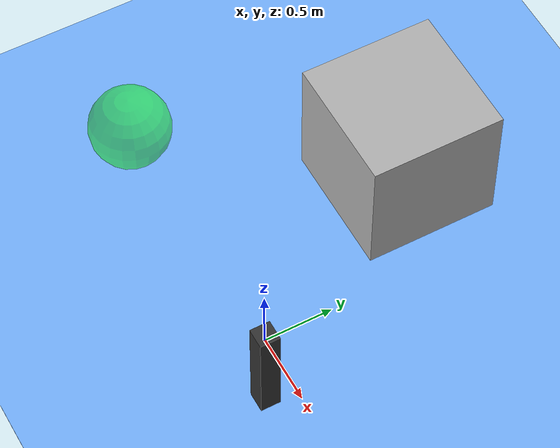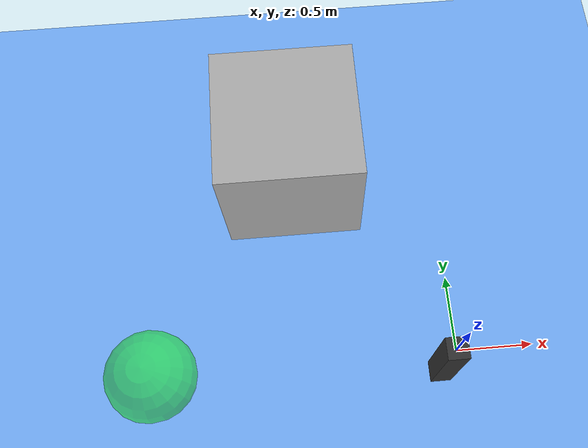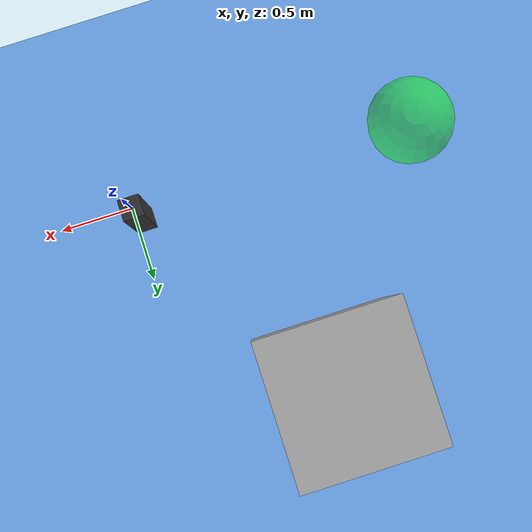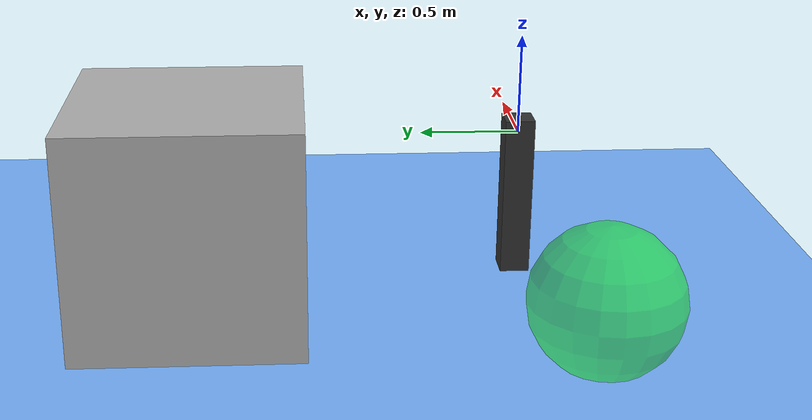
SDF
<sdf version="1.6">
 <world name="world">
  <physics type="ode">
   <max_step_size>0.004</max_step_size>
   <max_contacts>5</max_contacts>
   <ode>
    <solver>
     <iters>25</iters>
     <type>world</type>
     <sor>1.3</sor>
     <use_dynamic_moi_rescaling>0</use_dynamic_moi_rescaling>
    </solver>
    <constraints><cfm>0.0</cfm><contact_surface_layer>0.0</contact_surface_layer></constraints>
   </ode>
  </physics>
  <model name="GoalArea">
   <pose>-2.0 0.0 0.0 0 -0 0</pose>
   <static>1</static>
   <link name="GoalArea_link">
    <visual name="GoalArea_visual">
     <geometry><sphere><radius>0.3</radius></sphere></geometry>
     <material><ambient>0 1 0 0.5</ambient></material>
    </visual>
   </link>
  </model>
  <model name="floor">
   <pose>0 0 -0.75 0 0 0</pose>
   <static>1</static>
   <link name="floorlink">
    <visual name="floorvisual">
     <geometry><box><size>100 100 0.005</size></box></geometry>
     <material><ambient>0.46274509803921568627 0.6980392156862745098 1 1.0</ambient></material>
    </visual>
    <collision name="floorcollision"><geometry><box><size>10 10 0.005</size></box></geometry></collision>
   </link>
  </model>
  <model name="base">
   <pose>0 0 -0.425 0 0 0</pose>
   <static>1</static>
   <link name="baselink">
    <visual name="basevisual">
     <geometry><box><size>0.15 0.15 1</size></box></geometry>
     <material><ambient>0.2 0.2 0.2 1.0</ambient></material>
    </visual>
   </link>
  </model>
  <model name="box1">
   <pose>-1.0 1.6 0.0 0 0 0</pose>
   <static>1</static>
   <link name="box1link">
    <visual name="box1visual">
     <geometry><box><size>1 1 1</size></box></geometry>
     <material><ambient>0.7 0.7 0.7 1.0</ambient></material>
    </visual>
    <collision name="box1collision"><geometry><box><size>1 1 1</size></box></geometry></collision>
   </link>
  </model>
 </world>
</sdf>
